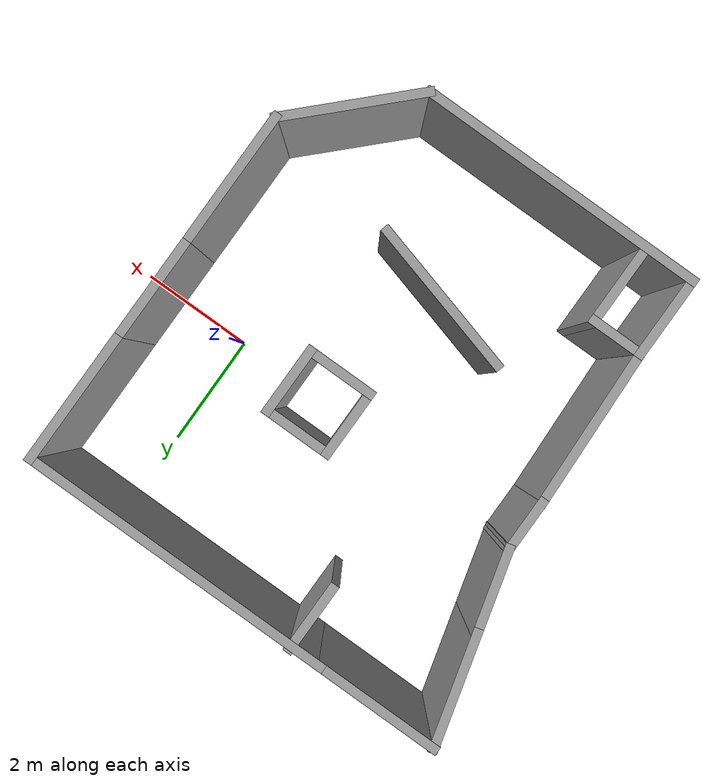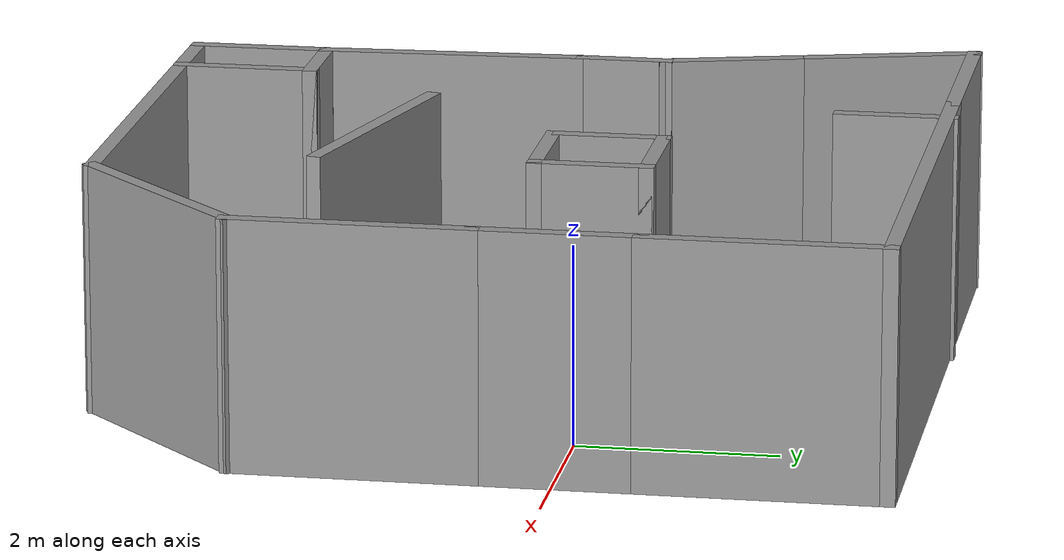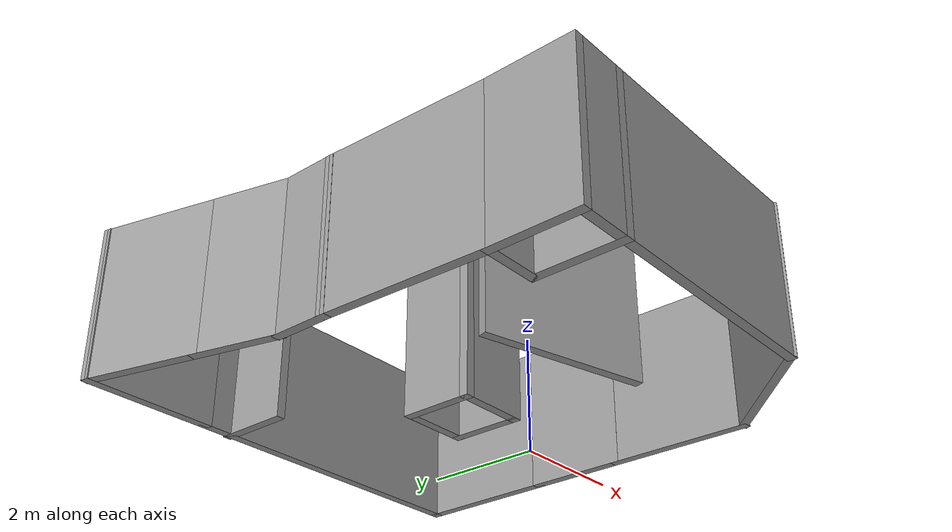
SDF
<?xml version='1.0'?>
<sdf version='1.7'>
  <model name='Collect_Maze_1'>
    <pose>-2.3979 -0.786384 0 0 -0 0</pose>
    <link name='Wall_16'>
      <collision name='Wall_16_Collision'>
        <geometry>
          <box>
            <size>1.75 0.15 2.5</size>
          </box>
        </geometry>
        <pose>0 0 1.25 0 -0 0</pose>
      </collision>
      <visual name='Wall_16_Visual'>
        <pose>0 0 1.25 0 -0 0</pose>
        <geometry>
          <box>
            <size>1.75 0.15 2.5</size>
          </box>
        </geometry>
        <material>
          <script>
            <uri>file://media/materials/scripts/gazebo.material</uri>
            <name>Gazebo/Grey</name>
          </script>
          <ambient>1 1 1 1</ambient>
        </material>
        <meta>
          <layer>0</layer>
        </meta>
      </visual>
      <pose>3.71789 0.826384 0 0 -0 -1.5708</pose>
    </link>
    <link name='Wall_19'>
      <collision name='Wall_19_Collision'>
        <geometry>
          <box>
            <size>2.5 0.15 2.5</size>
          </box>
        </geometry>
        <pose>0 0 1.25 0 -0 0</pose>
      </collision>
      <visual name='Wall_19_Visual'>
        <pose>0 0 1.25 0 -0 0</pose>
        <geometry>
          <box>
            <size>2.5 0.15 2.5</size>
          </box>
        </geometry>
        <material>
          <script>
            <uri>file://media/materials/scripts/gazebo.material</uri>
            <name>Gazebo/Grey</name>
          </script>
          <ambient>1 1 1 1</ambient>
        </material>
        <meta>
          <layer>0</layer>
        </meta>
      </visual>
      <pose>3.71789 2.80138 0 0 -0 1.5708</pose>
    </link>
    <link name='Wall_20'>
      <collision name='Wall_20_Collision'>
        <geometry>
          <box>
            <size>5.5 0.15 2.5</size>
          </box>
        </geometry>
        <pose>0 0 1.25 0 -0 0</pose>
      </collision>
      <visual name='Wall_20_Visual'>
        <pose>0 0 1.25 0 -0 0</pose>
        <geometry>
          <box>
            <size>5.5 0.15 2.5</size>
          </box>
        </geometry>
        <material>
          <script>
            <uri>file://media/materials/scripts/gazebo.material</uri>
            <name>Gazebo/Grey</name>
          </script>
          <ambient>1 1 1 1</ambient>
        </material>
        <meta>
          <layer>0</layer>
        </meta>
      </visual>
      <pose>1.04289 3.97638 0 0 -0 3.14159</pose>
    </link>
    <link name='Wall_21'>
      <collision name='Wall_21_Collision'>
        <geometry>
          <box>
            <size>2.25 0.15 2.5</size>
          </box>
        </geometry>
        <pose>0 0 1.25 0 -0 0</pose>
      </collision>
      <visual name='Wall_21_Visual'>
        <pose>0 0 1.25 0 -0 0</pose>
        <geometry>
          <box>
            <size>2.25 0.15 2.5</size>
          </box>
        </geometry>
        <material>
          <script>
            <uri>file://media/materials/scripts/gazebo.material</uri>
            <name>Gazebo/Grey</name>
          </script>
          <ambient>1 1 1 1</ambient>
        </material>
        <meta>
          <layer>0</layer>
        </meta>
      </visual>
      <pose>-2.6821 3.97638 0 0 -0 3.14159</pose>
    </link>
    <link name='Wall_22'>
      <collision name='Wall_22_Collision'>
        <geometry>
          <box>
            <size>2 0.15 2.5</size>
          </box>
        </geometry>
        <pose>0 0 1.25 0 -0 0</pose>
      </collision>
      <visual name='Wall_22_Visual'>
        <pose>0 0 1.25 0 -0 0</pose>
        <geometry>
          <box>
            <size>2 0.15 2.5</size>
          </box>
        </geometry>
        <material>
          <script>
            <uri>file://media/materials/scripts/gazebo.material</uri>
            <name>Gazebo/Grey</name>
          </script>
          <ambient>1 1 1 1</ambient>
        </material>
        <meta>
          <layer>0</layer>
        </meta>
      </visual>
      <pose>-3.4927 3.0829 0 0 -0 -1.309</pose>
    </link>
    <link name='Wall_23'>
      <collision name='Wall_23_Collision'>
        <geometry>
          <box>
            <size>1.5 0.15 2.5</size>
          </box>
        </geometry>
        <pose>0 0 1.25 0 -0 0</pose>
      </collision>
      <visual name='Wall_23_Visual'>
        <pose>0 0 1.25 0 -0 0</pose>
        <geometry>
          <box>
            <size>1.5 0.15 2.5</size>
          </box>
        </geometry>
        <material>
          <script>
            <uri>file://media/materials/scripts/gazebo.material</uri>
            <name>Gazebo/Grey</name>
          </script>
          <ambient>1 1 1 1</ambient>
        </material>
        <meta>
          <layer>0</layer>
        </meta>
      </visual>
      <pose>-3.07859 1.53742 0 0 -0 -1.309</pose>
    </link>
    <link name='Wall_24'>
      <collision name='Wall_24_Collision'>
        <geometry>
          <box>
            <size>1 0.15 2.5</size>
          </box>
        </geometry>
        <pose>0 0 1.25 0 -0 0</pose>
      </collision>
      <visual name='Wall_24_Visual'>
        <pose>0 0 1.25 0 -0 0</pose>
        <geometry>
          <box>
            <size>1 0.15 2.5</size>
          </box>
        </geometry>
        <material>
          <script>
            <uri>file://media/materials/scripts/gazebo.material</uri>
            <name>Gazebo/Grey</name>
          </script>
          <ambient>1 1 1 1</ambient>
        </material>
        <meta>
          <layer>0</layer>
        </meta>
      </visual>
      <pose>-2.90388 0.460421 0 0 -0 -1.5708</pose>
    </link>
    <link name='Wall_26'>
      <collision name='Wall_26_Collision'>
        <geometry>
          <box>
            <size>2.5 0.15 2.5</size>
          </box>
        </geometry>
        <pose>0 0 1.25 0 -0 0</pose>
      </collision>
      <visual name='Wall_26_Visual'>
        <pose>0 0 1.25 0 -0 0</pose>
        <geometry>
          <box>
            <size>2.5 0.15 2.5</size>
          </box>
        </geometry>
        <material>
          <script>
            <uri>file://media/materials/scripts/gazebo.material</uri>
            <name>Gazebo/Grey</name>
          </script>
          <ambient>1 1 1 1</ambient>
        </material>
        <meta>
          <layer>0</layer>
        </meta>
      </visual>
      <pose>3.71789 -1.14862 0 0 -0 -1.5708</pose>
    </link>
    <link name='Wall_28'>
      <collision name='Wall_28_Collision'>
        <geometry>
          <box>
            <size>2.5 0.15 2.5</size>
          </box>
        </geometry>
        <pose>0 0 1.25 0 -0 0</pose>
      </collision>
      <visual name='Wall_28_Visual'>
        <pose>0 0 1.25 0 -0 0</pose>
        <geometry>
          <box>
            <size>2.5 0.15 2.5</size>
          </box>
        </geometry>
        <material>
          <script>
            <uri>file://media/materials/scripts/gazebo.material</uri>
            <name>Gazebo/Grey</name>
          </script>
          <ambient>1 1 1 1</ambient>
        </material>
        <meta>
          <layer>0</layer>
        </meta>
      </visual>
      <pose>2.88704 -3.15447 0 0 -0 -2.35619</pose>
    </link>
    <link name='Wall_29'>
      <collision name='Wall_29_Collision'>
        <geometry>
          <box>
            <size>5 0.15 2.5</size>
          </box>
        </geometry>
        <pose>0 0 1.25 0 -0 0</pose>
      </collision>
      <visual name='Wall_29_Visual'>
        <pose>0 0 1.25 0 -0 0</pose>
        <geometry>
          <box>
            <size>5 0.15 2.5</size>
          </box>
        </geometry>
        <material>
          <script>
            <uri>file://media/materials/scripts/gazebo.material</uri>
            <name>Gazebo/Grey</name>
          </script>
          <ambient>1 1 1 1</ambient>
        </material>
        <meta>
          <layer>0</layer>
        </meta>
      </visual>
      <pose>-0.368806 -3.98532 0 0 -0 3.14159</pose>
    </link>
    <link name='Wall_30'>
      <collision name='Wall_30_Collision'>
        <geometry>
          <box>
            <size>1.5 0.15 2.5</size>
          </box>
        </geometry>
        <pose>0 0 1.25 0 -0 0</pose>
      </collision>
      <visual name='Wall_30_Visual'>
        <pose>0 0 1.25 0 -0 0</pose>
        <geometry>
          <box>
            <size>1.5 0.15 2.5</size>
          </box>
        </geometry>
        <material>
          <script>
            <uri>file://media/materials/scripts/gazebo.material</uri>
            <name>Gazebo/Grey</name>
          </script>
          <ambient>1 1 1 1</ambient>
        </material>
        <meta>
          <layer>0</layer>
        </meta>
      </visual>
      <pose>-2.79381 -3.31032 0 0 -0 1.5708</pose>
    </link>
    <link name='Wall_31'>
      <collision name='Wall_31_Collision'>
        <geometry>
          <box>
            <size>2.82301 0.15 2.5</size>
          </box>
        </geometry>
        <pose>0 0 1.25 0 -0 0</pose>
      </collision>
      <visual name='Wall_31_Visual'>
        <pose>0 0 1.25 0 -0 0</pose>
        <geometry>
          <box>
            <size>2.82301 0.15 2.5</size>
          </box>
        </geometry>
        <material>
          <script>
            <uri>file://media/materials/scripts/gazebo.material</uri>
            <name>Gazebo/Grey</name>
          </script>
          <ambient>1 1 1 1</ambient>
        </material>
        <meta>
          <layer>0</layer>
        </meta>
      </visual>
      <pose>-2.84884 -1.29995 0 0 -0 1.61199</pose>
    </link>
    <link name='Wall_34'>
      <collision name='Wall_34_Collision'>
        <geometry>
          <box>
            <size>1.25 0.15 2.5</size>
          </box>
        </geometry>
        <pose>0 0 1.25 0 -0 0</pose>
      </collision>
      <visual name='Wall_34_Visual'>
        <pose>0 0 1.25 0 -0 0</pose>
        <geometry>
          <box>
            <size>1.25 0.15 2.5</size>
          </box>
        </geometry>
        <material>
          <script>
            <uri>file://media/materials/scripts/gazebo.material</uri>
            <name>Gazebo/Grey</name>
          </script>
          <ambient>1 1 1 1</ambient>
        </material>
        <meta>
          <layer>0</layer>
        </meta>
      </visual>
      <pose>1.24789 0.766384 0 0 -0 -1.5708</pose>
    </link>
    <link name='Wall_35'>
      <collision name='Wall_35_Collision'>
        <geometry>
          <box>
            <size>1.25 0.15 2.5</size>
          </box>
        </geometry>
        <pose>0 0 1.25 0 -0 0</pose>
      </collision>
      <visual name='Wall_35_Visual'>
        <pose>0 0 1.25 0 -0 0</pose>
        <geometry>
          <box>
            <size>1.25 0.15 2.5</size>
          </box>
        </geometry>
        <material>
          <script>
            <uri>file://media/materials/scripts/gazebo.material</uri>
            <name>Gazebo/Grey</name>
          </script>
          <ambient>1 1 1 1</ambient>
        </material>
        <meta>
          <layer>0</layer>
        </meta>
      </visual>
      <pose>0.697895 0.216384 0 0 -0 3.14159</pose>
    </link>
    <link name='Wall_36'>
      <collision name='Wall_36_Collision'>
        <geometry>
          <box>
            <size>1.25 0.15 2.5</size>
          </box>
        </geometry>
        <pose>0 0 1.25 0 -0 0</pose>
      </collision>
      <visual name='Wall_36_Visual'>
        <pose>0 0 1.25 0 -0 0</pose>
        <geometry>
          <box>
            <size>1.25 0.15 2.5</size>
          </box>
        </geometry>
        <material>
          <script>
            <uri>file://media/materials/scripts/gazebo.material</uri>
            <name>Gazebo/Grey</name>
          </script>
          <ambient>1 1 1 1</ambient>
        </material>
        <meta>
          <layer>0</layer>
        </meta>
      </visual>
      <pose>0.147895 0.766384 0 0 -0 1.5708</pose>
    </link>
    <link name='Wall_37'>
      <collision name='Wall_37_Collision'>
        <geometry>
          <box>
            <size>1.25 0.15 2.5</size>
          </box>
        </geometry>
        <pose>0 0 1.25 0 -0 0</pose>
      </collision>
      <visual name='Wall_37_Visual'>
        <pose>0 0 1.25 0 -0 0</pose>
        <geometry>
          <box>
            <size>1.25 0.15 2.5</size>
          </box>
        </geometry>
        <material>
          <script>
            <uri>file://media/materials/scripts/gazebo.material</uri>
            <name>Gazebo/Grey</name>
          </script>
          <ambient>1 1 1 1</ambient>
        </material>
        <meta>
          <layer>0</layer>
        </meta>
      </visual>
      <pose>0.697895 1.31638 0 0 -0 0</pose>
    </link>
    <link name='Wall_39'>
      <collision name='Wall_39_Collision'>
        <geometry>
          <box>
            <size>2.75 0.15 2.5</size>
          </box>
        </geometry>
        <pose>0 0 1.25 0 -0 0</pose>
      </collision>
      <visual name='Wall_39_Visual'>
        <pose>0 0 1.25 0 -0 0</pose>
        <geometry>
          <box>
            <size>2.75 0.15 2.5</size>
          </box>
        </geometry>
        <material>
          <script>
            <uri>file://media/materials/scripts/gazebo.material</uri>
            <name>Gazebo/Grey</name>
          </script>
          <ambient>1 1 1 1</ambient>
        </material>
        <meta>
          <layer>0</layer>
        </meta>
      </visual>
      <pose>0.103598 -1.58008 0 0 -0 -0.261799</pose>
    </link>
    <link name='Wall_46'>
      <collision name='Wall_46_Collision'>
        <geometry>
          <box>
            <size>1.25 0.15 2.5</size>
          </box>
        </geometry>
        <pose>0 0 1.25 0 -0 0</pose>
      </collision>
      <visual name='Wall_46_Visual'>
        <pose>0 0 1.25 0 -0 0</pose>
        <geometry>
          <box>
            <size>1.25 0.15 2.5</size>
          </box>
        </geometry>
        <material>
          <script>
            <uri>file://media/materials/scripts/gazebo.material</uri>
            <name>Gazebo/Grey</name>
          </script>
          <ambient>1 1 1 1</ambient>
        </material>
        <meta>
          <layer>0</layer>
        </meta>
      </visual>
      <pose>-1.1021 3.46638 0 0 -0 -1.5708</pose>
    </link>
    <link name='Wall_51'>
      <collision name='Wall_51_Collision'>
        <geometry>
          <box>
            <size>1 0.15 2.5</size>
          </box>
        </geometry>
        <pose>0 0 1.25 0 -0 0</pose>
      </collision>
      <visual name='Wall_51_Visual'>
        <pose>0 0 1.25 0 -0 0</pose>
        <geometry>
          <box>
            <size>1 0.15 2.5</size>
          </box>
        </geometry>
        <material>
          <script>
            <uri>file://media/materials/scripts/gazebo.material</uri>
            <name>Gazebo/Grey</name>
          </script>
          <ambient>1 1 1 1</ambient>
        </material>
        <meta>
          <layer>0</layer>
        </meta>
      </visual>
      <pose>-2.36881 -2.63532 0 0 -0 0</pose>
    </link>
    <link name='Wall_52'>
      <collision name='Wall_52_Collision'>
        <geometry>
          <box>
            <size>1.5 0.15 2.5</size>
          </box>
        </geometry>
        <pose>0 0 1.25 0 -0 0</pose>
      </collision>
      <visual name='Wall_52_Visual'>
        <pose>0 0 1.25 0 -0 0</pose>
        <geometry>
          <box>
            <size>1.5 0.15 2.5</size>
          </box>
        </geometry>
        <material>
          <script>
            <uri>file://media/materials/scripts/gazebo.material</uri>
            <name>Gazebo/Grey</name>
          </script>
          <ambient>1 1 1 1</ambient>
        </material>
        <meta>
          <layer>0</layer>
        </meta>
      </visual>
      <pose>-1.94381 -3.31032 0 0 -0 -1.5708</pose>
    </link>
    <static>1</static>
  </model>
</sdf>
